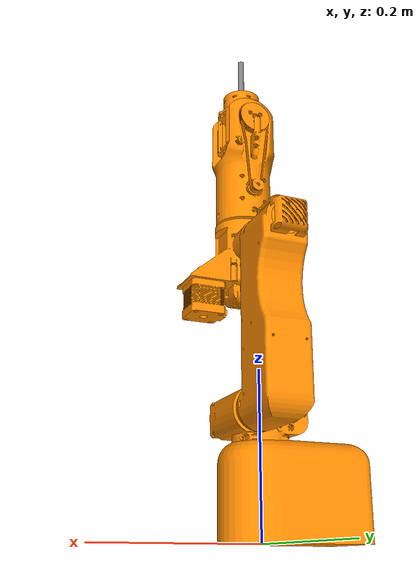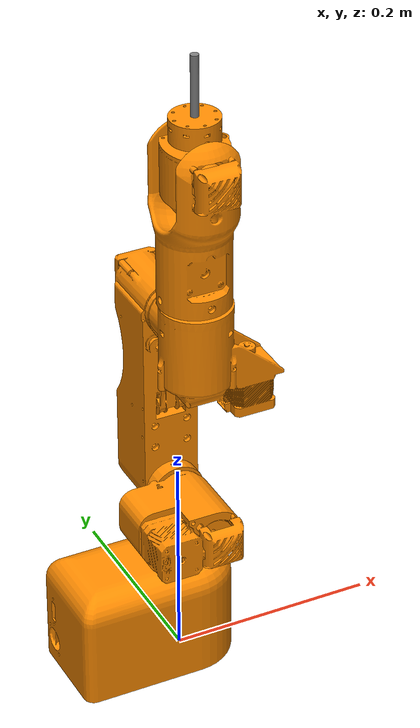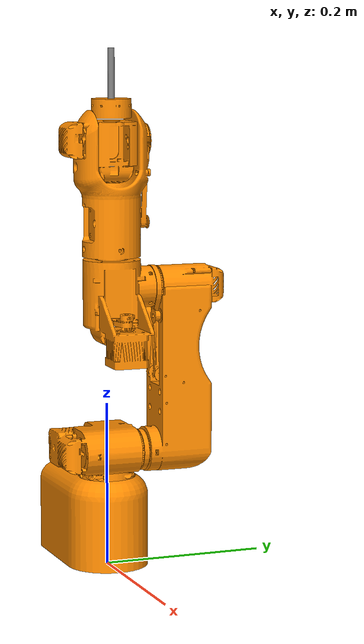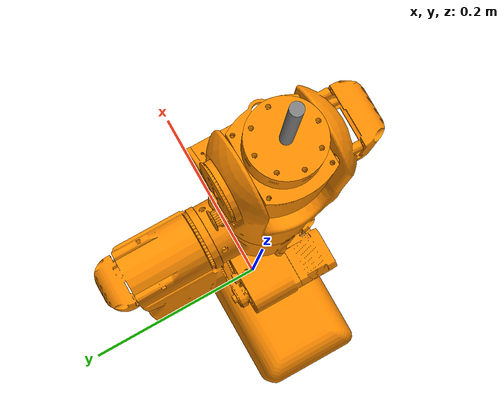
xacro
<?xml version="1.0"?>
<robot xmlns:xacro="http://www.ros.org/wiki/xacro" name="helene">

  <xacro:property name="mesh_scale" value="0.001 0.001 0.001" />
  <xacro:arg name="use_mock_hardware" default="false" />
  <xacro:arg name="use_ft_sensor" default="false" />

  <xacro:macro name="create_link" params="link_name mesh_file mass ixx iyy izz">
    <link name="${link_name}">
      <visual>
        <geometry>
          <mesh filename="package://hw_description/meshes/${mesh_file}" scale="${mesh_scale}"/>
        </geometry>
        <material name="gold">
          <color rgba="1 0.549 0 1" />
        </material>
      </visual>
      <collision>
        <geometry>
          <mesh filename="package://hw_description/meshes/${mesh_file}" scale="${mesh_scale}"/>
        </geometry>
      </collision>
      <inertial>
        <origin xyz="0 0 0" rpy="0 0 0"/>
        <mass value="${mass}"/>
        <inertia ixx="${ixx}" ixy="0.0" ixz="0.0" iyy="${iyy}" iyz="0.0" izz="${izz}"/>
      </inertial>
    </link>
  </xacro:macro>

  <link name="world" />
  <joint name="world_to_base_link" type="fixed">
    <parent link="world"/>
    <child link="base_link"/>
    <origin xyz="0 0 0" rpy="0 0 0"/>
  </joint>

  <xacro:create_link link_name="base_link" mesh_file="Komponente1.stl" mass="2.0" ixx="0.01" iyy="0.01" izz="0.01" />
  <xacro:create_link link_name="axis_0"    mesh_file="Komponente2.stl" mass="1.5" ixx="0.01" iyy="0.01" izz="0.01" />
  <xacro:create_link link_name="axis_1"    mesh_file="Komponente3.stl" mass="1.2" ixx="0.01" iyy="0.01" izz="0.01" />
  <xacro:create_link link_name="axis_2"    mesh_file="Komponente4.stl" mass="1.0" ixx="0.01" iyy="0.01" izz="0.01" />
  <xacro:create_link link_name="axis_3"    mesh_file="Komponente5.stl" mass="0.8" ixx="0.005" iyy="0.005" izz="0.005" />
  <xacro:create_link link_name="axis_4"    mesh_file="Komponente6.stl" mass="0.6" ixx="0.005" iyy="0.005" izz="0.005" />
  <xacro:create_link link_name="axis_5"    mesh_file="Flansch.stl"     mass="0.3" ixx="0.001" iyy="0.001" izz="0.001" />

  <link name="axis_6">
    <visual>
      <geometry>
        <cylinder radius="0.004" length="0.06"/>
      </geometry>
      <origin xyz="0 0 0.03" rpy="0 0 0"/>
      <material name="grey">
        <color rgba="0.5 0.5 0.5 1"/>
      </material>
    </visual>
    <collision>
      <geometry>
        <cylinder radius="0.004" length="0.06"/>
      </geometry>
      <origin xyz="0 0 0.03" rpy="0 0 0"/>
    </collision>
    <inertial>
      <mass value="0.06"/> <origin xyz="0 0 0.03" rpy="0 0 0"/>
      <inertia ixx="0.0001" ixy="0" ixz="0" iyy="0.0001" iyz="0" izz="0.0001"/>
    </inertial>
  </link>

  <joint name="q1" type="revolute">
    <parent link="base_link"/><child link="axis_0"/>
    <origin xyz="0 0 0" rpy="0 0 0"/>
    <axis xyz="0 0 1"/>
    <limit effort="1000.0" lower="-2.79" upper="2.79" velocity="0.5" /> </joint>

  <joint name="q2" type="revolute">
    <parent link="axis_0"/><child link="axis_1"/>
    <origin xyz="0.02 0 0.145" rpy="-1.571 0 0"/>
    <axis xyz="0 0 1"/>
    <limit effort="1000.0" lower="-1.83" upper="1.83" velocity="0.5" /> </joint>

  <joint name="q3" type="revolute">
    <parent link="axis_1"/><child link="axis_2"/>
    <origin xyz="0 -0.200 0" rpy="0 0 3.141"/>
    <axis xyz="0 0 1"/>
    <limit effort="1000.0" lower="0" upper="2.7925" velocity="0.5" /> </joint>

  <joint name="q4" type="revolute">
    <parent link="axis_2"/><child link="axis_3"/>
    <origin xyz="0 0 0" rpy="-1.571 0 0"/>
    <axis xyz="0 0 1"/>
    <limit effort="1000.0" lower="-2.9" upper="2.9" velocity="0.8" /> </joint>

  <joint name="q5" type="revolute">
    <parent link="axis_3"/><child link="axis_4"/>
    <origin xyz="0 0 0.177" rpy="1.571 0 0"/>
    <axis xyz="0 0 1"/>
    <limit effort="1000.0" lower="-2.7" upper="2.7" velocity="0.8" />
  </joint>

  <joint name="q6" type="revolute">
    <parent link="axis_4"/><child link="axis_5"/>
    <origin xyz="0 0 0" rpy="-1.571 0 0"/>
    <axis xyz="0 0 1"/>
    <limit effort="1000.0" lower="-3.141" upper="3.141" velocity="1.0" />
  </joint>

  <joint name="q7" type="fixed">
    <parent link="axis_5"/>
    <child link="axis_6"/>
    <origin xyz="0 0 0.05" rpy="0 0 0"/>
  </joint>

  <ros2_control name="HeleneControl" type="system">
    <hardware>
        <xacro:if value="$(arg use_mock_hardware)">
            <plugin>ign_ros2_control/IgnitionSystem</plugin>
        </xacro:if>
        <xacro:unless value="$(arg use_mock_hardware)">
            <plugin>controller_helene/HeleneHardwareInterface</plugin>
        </xacro:unless>
    </hardware>

    <xacro:macro name="configure_joint" params="joint_name">
      <joint name="${joint_name}">
        <command_interface name="velocity"/>

        <state_interface name="position">
          <param name="initial_value">0.0</param>
        </state_interface>
        <state_interface name="velocity"/>
      </joint>
    </xacro:macro>

    <xacro:configure_joint joint_name="q1"/>
    <xacro:configure_joint joint_name="q2"/>
    <xacro:configure_joint joint_name="q3"/>
    <xacro:configure_joint joint_name="q4"/>
    <xacro:configure_joint joint_name="q5"/>
    <xacro:configure_joint joint_name="q6"/>

    <xacro:if value="$(arg use_ft_sensor)">
      <sensor name="tcp_force_torque_sensor">
        <state_interface name="force.x"/><state_interface name="force.y"/><state_interface name="force.z"/>
        <state_interface name="torque.x"/><state_interface name="torque.y"/><state_interface name="torque.z"/>
      </sensor>
    </xacro:if>

  </ros2_control>

  <gazebo>
    <plugin filename="ign_ros2_control-system" name="ign_ros2_control::IgnitionROS2ControlPlugin">
      <parameters>$(find controller_helene)/config/helene_controllers.yaml</parameters>
      <ros>
        <namespace>/</namespace>
      </ros>
    </plugin>
  </gazebo>

  <xacro:if value="$(arg use_ft_sensor)">
    <gazebo reference="q7">
      <preserveFixedJoint>true</preserveFixedJoint>

      <sensor name="tcp_force_torque_sensor" type="force_torque">
        <always_on>true</always_on>
        <update_rate>500</update_rate>
        <topic>/force_torque_sensor</topic>
        <force_torque>
          <frame>child</frame>
          <measure_direction>child_to_parent</measure_direction>
        </force_torque>
      </sensor>
    </gazebo>
  </xacro:if>

  <gazebo reference="axis_6">
    <material>Gazebo/Grey</material>
    <mu1>0.1</mu1>
    <mu2>0.1</mu2>
    <kp>50000.0</kp>
    <kd>50.0</kd>
    <maxVel>0.01</maxVel>
    <minDepth>0.001</minDepth>
  </gazebo>

</robot>
